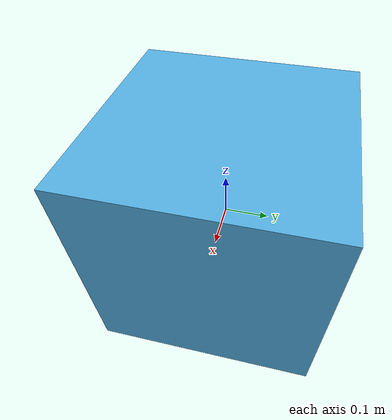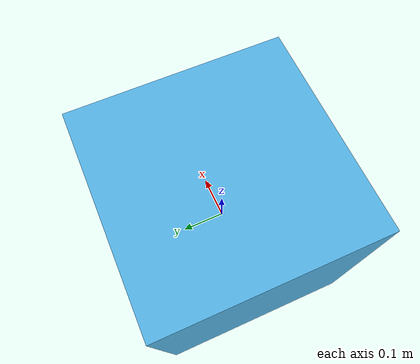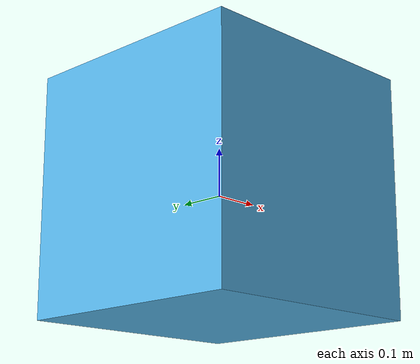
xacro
<?xml version="1.0"?>
<robot xmlns:xacro="http://www.ros.org/wiki/xacro" >

    <material name="white">
        <color rgba="1 1 1 1" />
    </material>

    <material name="orange">
        <color rgba="1 0.3 0.1 1"/>
    </material>

    <material name="blue">
        <color rgba="0.2 0.2 1 1"/>
    </material>

    <material name="black">
        <color rgba="0 0 0 1"/>
    </material>

    <material name="red">
        <color rgba="1 0 0 1"/>
    </material>

  <!-- root link, on the ground just below the model origin -->
  <link name="base_footprint">
   <visual>
      <origin xyz="0 0 0" rpy="0 0 0" />
      <geometry>
        <box size="0.001 0.001 0.001" />
      </geometry>
    </visual>
  </link>

  <joint name="base_link_joint" type="fixed">
    <origin xyz="0 0 0" rpy="0 0 0" />
    <parent link="base_footprint"/>
    <child link="base_link" />
  </joint>

  <!-- the model -->
  <link name="base_link">
    <inertial>
      <mass value="50" />
      <origin xyz="0 0 0" />
      <inertia ixx="50.0" ixy="0.0" ixz="0.0"
        iyy="50.0" iyz="0.0"
        izz="50.0" />
    </inertial>
    <visual>
      <geometry>
        <box size="0.5 0.5 0.5" /> <!-- does not need to match collision -->
      </geometry>
    </visual>
    <collision>
      <origin xyz="0 0 0" />
      <geometry>
        <box size="0.5 0.5 0.5" />
      </geometry>
    </collision>
  </link>

  <gazebo>
    <plugin name="object_controller" filename="libgazebo_ros_planar_move.so">
      <commandTopic>cmd_vel</commandTopic>
      <odometryTopic>odom</odometryTopic>
      <odometryFrame>odom</odometryFrame>
      <odometryRate>20.0</odometryRate>
      <robotBaseFrame>base_footprint</robotBaseFrame>
    </plugin>
  </gazebo>

</robot>
